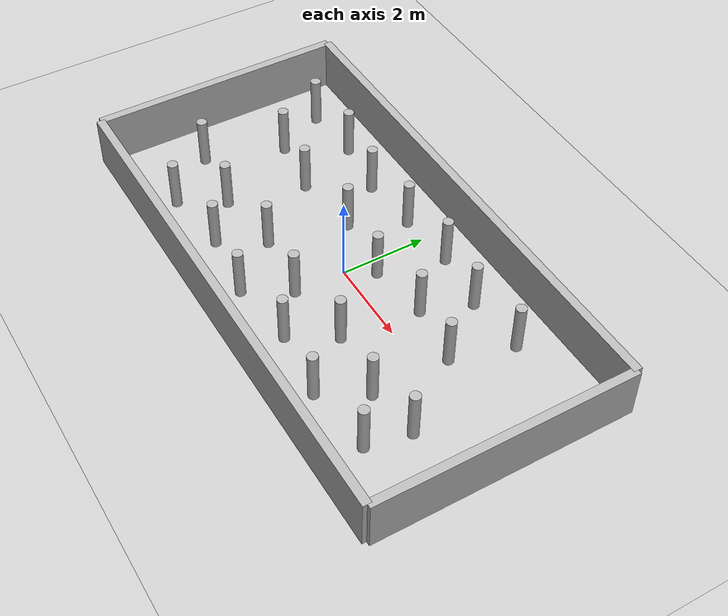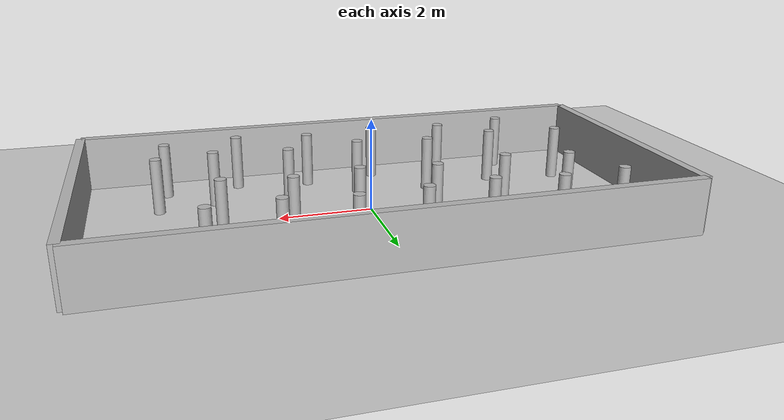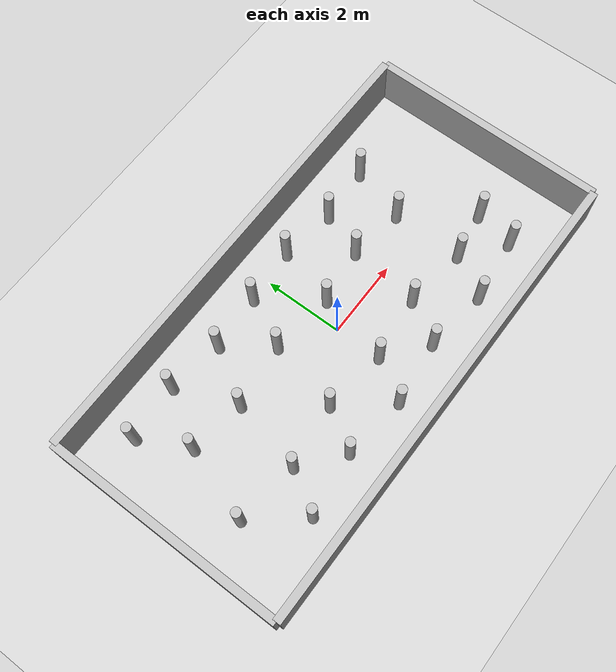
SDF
<?xml version="1.0" ?>
<sdf version="1.6">
  <world name="nonlinear_corridor">
    <physics type="ode">
      <max_step_size>0.001</max_step_size>
      <real_time_factor>1.0</real_time_factor>
      <real_time_update_rate>1000</real_time_update_rate>
    </physics>

    <include><uri>model://ground_plane</uri></include>
    <include><uri>model://sun</uri></include>

    <scene><shadows>false</shadows></scene>

    <!-- 12 x 6 outer room only (no inner walls) -->
    <model name="outer_north"><static>true</static><pose>0 3.0 0.6 0 0 0</pose><link name="link"><collision name="collision"><geometry><box><size>12.0 0.2 1.2</size></box></geometry></collision><visual name="visual"><geometry><box><size>12.0 0.2 1.2</size></box></geometry></visual></link></model>
    <model name="outer_south"><static>true</static><pose>0 -3.0 0.6 0 0 0</pose><link name="link"><collision name="collision"><geometry><box><size>12.0 0.2 1.2</size></box></geometry></collision><visual name="visual"><geometry><box><size>12.0 0.2 1.2</size></box></geometry></visual></link></model>
    <model name="outer_east"><static>true</static><pose>6.0 0 0.6 0 0 0</pose><link name="link"><collision name="collision"><geometry><box><size>0.2 6.0 1.2</size></box></geometry></collision><visual name="visual"><geometry><box><size>0.2 6.0 1.2</size></box></geometry></visual></link></model>
    <model name="outer_west"><static>true</static><pose>-6.0 0 0.6 0 0 0</pose><link name="link"><collision name="collision"><geometry><box><size>0.2 6.0 1.2</size></box></geometry></collision><visual name="visual"><geometry><box><size>0.2 6.0 1.2</size></box></geometry></visual></link></model>

    <!-- Dense column field for weaving trajectories -->
    <model name="col_01"><static>true</static><pose>-4.8 2.0 0.6 0 0 0</pose><link name="link"><collision name="collision"><geometry><cylinder><radius>0.12</radius><length>1.2</length></cylinder></geometry></collision><visual name="visual"><geometry><cylinder><radius>0.12</radius><length>1.2</length></cylinder></geometry></visual></link></model>
    <model name="col_02"><static>true</static><pose>-3.4 2.1 0.6 0 0 0</pose><link name="link"><collision name="collision"><geometry><cylinder><radius>0.12</radius><length>1.2</length></cylinder></geometry></collision><visual name="visual"><geometry><cylinder><radius>0.12</radius><length>1.2</length></cylinder></geometry></visual></link></model>
    <model name="col_03"><static>true</static><pose>-2.0 1.9 0.6 0 0 0</pose><link name="link"><collision name="collision"><geometry><cylinder><radius>0.12</radius><length>1.2</length></cylinder></geometry></collision><visual name="visual"><geometry><cylinder><radius>0.12</radius><length>1.2</length></cylinder></geometry></visual></link></model>
    <model name="col_04"><static>true</static><pose>-0.6 2.0 0.6 0 0 0</pose><link name="link"><collision name="collision"><geometry><cylinder><radius>0.12</radius><length>1.2</length></cylinder></geometry></collision><visual name="visual"><geometry><cylinder><radius>0.12</radius><length>1.2</length></cylinder></geometry></visual></link></model>
    <model name="col_05"><static>true</static><pose>0.8 2.1 0.6 0 0 0</pose><link name="link"><collision name="collision"><geometry><cylinder><radius>0.12</radius><length>1.2</length></cylinder></geometry></collision><visual name="visual"><geometry><cylinder><radius>0.12</radius><length>1.2</length></cylinder></geometry></visual></link></model>
    <model name="col_06"><static>true</static><pose>2.2 1.9 0.6 0 0 0</pose><link name="link"><collision name="collision"><geometry><cylinder><radius>0.12</radius><length>1.2</length></cylinder></geometry></collision><visual name="visual"><geometry><cylinder><radius>0.12</radius><length>1.2</length></cylinder></geometry></visual></link></model>
    <model name="col_07"><static>true</static><pose>3.6 2.0 0.6 0 0 0</pose><link name="link"><collision name="collision"><geometry><cylinder><radius>0.12</radius><length>1.2</length></cylinder></geometry></collision><visual name="visual"><geometry><cylinder><radius>0.12</radius><length>1.2</length></cylinder></geometry></visual></link></model>

    <model name="col_08"><static>true</static><pose>-4.2 0.8 0.6 0 0 0</pose><link name="link"><collision name="collision"><geometry><cylinder><radius>0.12</radius><length>1.2</length></cylinder></geometry></collision><visual name="visual"><geometry><cylinder><radius>0.12</radius><length>1.2</length></cylinder></geometry></visual></link></model>
    <model name="col_09"><static>true</static><pose>-2.8 0.6 0.6 0 0 0</pose><link name="link"><collision name="collision"><geometry><cylinder><radius>0.12</radius><length>1.2</length></cylinder></geometry></collision><visual name="visual"><geometry><cylinder><radius>0.12</radius><length>1.2</length></cylinder></geometry></visual></link></model>
    <model name="col_10"><static>true</static><pose>-1.2 0.8 0.6 0 0 0</pose><link name="link"><collision name="collision"><geometry><cylinder><radius>0.12</radius><length>1.2</length></cylinder></geometry></collision><visual name="visual"><geometry><cylinder><radius>0.12</radius><length>1.2</length></cylinder></geometry></visual></link></model>
    <model name="col_11"><static>true</static><pose>0.4 0.6 0.6 0 0 0</pose><link name="link"><collision name="collision"><geometry><cylinder><radius>0.12</radius><length>1.2</length></cylinder></geometry></collision><visual name="visual"><geometry><cylinder><radius>0.12</radius><length>1.2</length></cylinder></geometry></visual></link></model>
    <model name="col_12"><static>true</static><pose>1.8 0.8 0.6 0 0 0</pose><link name="link"><collision name="collision"><geometry><cylinder><radius>0.12</radius><length>1.2</length></cylinder></geometry></collision><visual name="visual"><geometry><cylinder><radius>0.12</radius><length>1.2</length></cylinder></geometry></visual></link></model>
    <model name="col_13"><static>true</static><pose>3.2 0.6 0.6 0 0 0</pose><link name="link"><collision name="collision"><geometry><cylinder><radius>0.12</radius><length>1.2</length></cylinder></geometry></collision><visual name="visual"><geometry><cylinder><radius>0.12</radius><length>1.2</length></cylinder></geometry></visual></link></model>

    <model name="col_14"><static>true</static><pose>-4.8 -1.0 0.6 0 0 0</pose><link name="link"><collision name="collision"><geometry><cylinder><radius>0.12</radius><length>1.2</length></cylinder></geometry></collision><visual name="visual"><geometry><cylinder><radius>0.12</radius><length>1.2</length></cylinder></geometry></visual></link></model>
    <model name="col_15"><static>true</static><pose>-3.2 -1.2 0.6 0 0 0</pose><link name="link"><collision name="collision"><geometry><cylinder><radius>0.12</radius><length>1.2</length></cylinder></geometry></collision><visual name="visual"><geometry><cylinder><radius>0.12</radius><length>1.2</length></cylinder></geometry></visual></link></model>
    <model name="col_16"><static>true</static><pose>-1.6 -1.0 0.6 0 0 0</pose><link name="link"><collision name="collision"><geometry><cylinder><radius>0.12</radius><length>1.2</length></cylinder></geometry></collision><visual name="visual"><geometry><cylinder><radius>0.12</radius><length>1.2</length></cylinder></geometry></visual></link></model>
    <model name="col_17"><static>true</static><pose>0.0 -1.2 0.6 0 0 0</pose><link name="link"><collision name="collision"><geometry><cylinder><radius>0.12</radius><length>1.2</length></cylinder></geometry></collision><visual name="visual"><geometry><cylinder><radius>0.12</radius><length>1.2</length></cylinder></geometry></visual></link></model>
    <model name="col_18"><static>true</static><pose>1.6 -1.0 0.6 0 0 0</pose><link name="link"><collision name="collision"><geometry><cylinder><radius>0.12</radius><length>1.2</length></cylinder></geometry></collision><visual name="visual"><geometry><cylinder><radius>0.12</radius><length>1.2</length></cylinder></geometry></visual></link></model>
    <model name="col_19"><static>true</static><pose>3.2 -1.2 0.6 0 0 0</pose><link name="link"><collision name="collision"><geometry><cylinder><radius>0.12</radius><length>1.2</length></cylinder></geometry></collision><visual name="visual"><geometry><cylinder><radius>0.12</radius><length>1.2</length></cylinder></geometry></visual></link></model>
    <model name="col_20"><static>true</static><pose>4.4 -1.0 0.6 0 0 0</pose><link name="link"><collision name="collision"><geometry><cylinder><radius>0.12</radius><length>1.2</length></cylinder></geometry></collision><visual name="visual"><geometry><cylinder><radius>0.12</radius><length>1.2</length></cylinder></geometry></visual></link></model>

    <model name="col_21"><static>true</static><pose>-3.8 -2.2 0.6 0 0 0</pose><link name="link"><collision name="collision"><geometry><cylinder><radius>0.12</radius><length>1.2</length></cylinder></geometry></collision><visual name="visual"><geometry><cylinder><radius>0.12</radius><length>1.2</length></cylinder></geometry></visual></link></model>
    <model name="col_22"><static>true</static><pose>-2.2 -2.0 0.6 0 0 0</pose><link name="link"><collision name="collision"><geometry><cylinder><radius>0.12</radius><length>1.2</length></cylinder></geometry></collision><visual name="visual"><geometry><cylinder><radius>0.12</radius><length>1.2</length></cylinder></geometry></visual></link></model>
    <model name="col_23"><static>true</static><pose>-0.6 -2.2 0.6 0 0 0</pose><link name="link"><collision name="collision"><geometry><cylinder><radius>0.12</radius><length>1.2</length></cylinder></geometry></collision><visual name="visual"><geometry><cylinder><radius>0.12</radius><length>1.2</length></cylinder></geometry></visual></link></model>
    <model name="col_24"><static>true</static><pose>1.0 -2.0 0.6 0 0 0</pose><link name="link"><collision name="collision"><geometry><cylinder><radius>0.12</radius><length>1.2</length></cylinder></geometry></collision><visual name="visual"><geometry><cylinder><radius>0.12</radius><length>1.2</length></cylinder></geometry></visual></link></model>
    <model name="col_25"><static>true</static><pose>2.6 -2.2 0.6 0 0 0</pose><link name="link"><collision name="collision"><geometry><cylinder><radius>0.12</radius><length>1.2</length></cylinder></geometry></collision><visual name="visual"><geometry><cylinder><radius>0.12</radius><length>1.2</length></cylinder></geometry></visual></link></model>
    <model name="col_26"><static>true</static><pose>4.2 -2.0 0.6 0 0 0</pose><link name="link"><collision name="collision"><geometry><cylinder><radius>0.12</radius><length>1.2</length></cylinder></geometry></collision><visual name="visual"><geometry><cylinder><radius>0.12</radius><length>1.2</length></cylinder></geometry></visual></link></model>
  </world>
</sdf>
